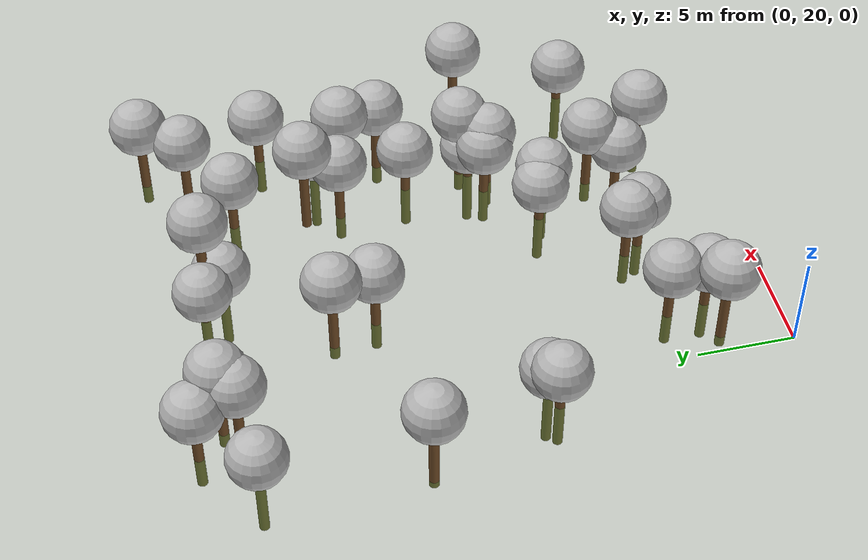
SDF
<sdf version="1.5">
 <world name="default">
  <model name="tree_simple477">
   <static>1</static>
   <link name="link">
    <pose>0 0 0.1 0 -0 0</pose>
    <collision name="collision_trunk">
     <pose>0 0 2 0 -0 0</pose>
     <geometry><cylinder><radius>0.25</radius><length>4</length></cylinder></geometry>
    </collision>
    <collision name="collision_treetop">
     <pose>0 0 5.2 0 -0 0</pose>
     <geometry><sphere><radius>1.5</radius></sphere></geometry>
    </collision>
    <visual name="trunk">
     <pose>0 0 2 0 -0 0</pose>
     <geometry><cylinder><radius>0.25</radius><length>4</length></cylinder></geometry>
     <material>
      <script>
       <uri>model://tree_simple/scripts</uri>
       <uri>model://tree_simple/materials/textures</uri>
       <name>TreeSimple/Trunk</name>
      </script>
     </material>
    </visual>
    <visual name="treetop">
     <pose>0 0 5.2 0 -0 0</pose>
     <geometry><sphere><radius>1.5</radius></sphere></geometry>
     <material>
      <script>
       <uri>model://tree_simple/scripts</uri>
       <uri>model://tree_simple/materials/textures</uri>
       <name>TreeSimple/Treetop</name>
      </script>
     </material>
    </visual>
   </link>
   <pose>-0.22927085135 32.6495918535 -4.0 0 -0 0</pose>
  </model>
  <model name="tree_simple457">
   <static>1</static>
   <link name="link">
    <pose>0 0 0.1 0 -0 0</pose>
    <collision name="collision_trunk">
     <pose>0 0 2 0 -0 0</pose>
     <geometry><cylinder><radius>0.25</radius><length>4</length></cylinder></geometry>
    </collision>
    <collision name="collision_treetop">
     <pose>0 0 5.2 0 -0 0</pose>
     <geometry><sphere><radius>1.5</radius></sphere></geometry>
    </collision>
    <visual name="trunk">
     <pose>0 0 2 0 -0 0</pose>
     <geometry><cylinder><radius>0.25</radius><length>4</length></cylinder></geometry>
     <material>
      <script>
       <uri>model://tree_simple/scripts</uri>
       <uri>model://tree_simple/materials/textures</uri>
       <name>TreeSimple/Trunk</name>
      </script>
     </material>
    </visual>
    <visual name="treetop">
     <pose>0 0 5.2 0 -0 0</pose>
     <geometry><sphere><radius>1.5</radius></sphere></geometry>
     <material>
      <script>
       <uri>model://tree_simple/scripts</uri>
       <uri>model://tree_simple/materials/textures</uri>
       <name>TreeSimple/Treetop</name>
      </script>
     </material>
    </visual>
   </link>
   <pose>13.2865883098 26.7984826025 -1.403246418944407 0 -0 0</pose>
  </model>
  <model name="tree_simple445">
   <static>1</static>
   <link name="link">
    <pose>0 0 0.1 0 -0 0</pose>
    <collision name="collision_trunk">
     <pose>0 0 2 0 -0 0</pose>
     <geometry><cylinder><radius>0.25</radius><length>4</length></cylinder></geometry>
    </collision>
    <collision name="collision_treetop">
     <pose>0 0 5.2 0 -0 0</pose>
     <geometry><sphere><radius>1.5</radius></sphere></geometry>
    </collision>
    <visual name="trunk">
     <pose>0 0 2 0 -0 0</pose>
     <geometry><cylinder><radius>0.25</radius><length>4</length></cylinder></geometry>
     <material>
      <script>
       <uri>model://tree_simple/scripts</uri>
       <uri>model://tree_simple/materials/textures</uri>
       <name>TreeSimple/Trunk</name>
      </script>
     </material>
    </visual>
    <visual name="treetop">
     <pose>0 0 5.2 0 -0 0</pose>
     <geometry><sphere><radius>1.5</radius></sphere></geometry>
     <material>
      <script>
       <uri>model://tree_simple/scripts</uri>
       <uri>model://tree_simple/materials/textures</uri>
       <name>TreeSimple/Treetop</name>
      </script>
     </material>
    </visual>
   </link>
   <pose>17.3330924595 47.7477611906 -1.7853356329379375 0 -0 0</pose>
  </model>
  <model name="tree_simple443">
   <static>1</static>
   <link name="link">
    <pose>0 0 0.1 0 -0 0</pose>
    <collision name="collision_trunk">
     <pose>0 0 2 0 -0 0</pose>
     <geometry><cylinder><radius>0.25</radius><length>4</length></cylinder></geometry>
    </collision>
    <collision name="collision_treetop">
     <pose>0 0 5.2 0 -0 0</pose>
     <geometry><sphere><radius>1.5</radius></sphere></geometry>
    </collision>
    <visual name="trunk">
     <pose>0 0 2 0 -0 0</pose>
     <geometry><cylinder><radius>0.25</radius><length>4</length></cylinder></geometry>
     <material>
      <script>
       <uri>model://tree_simple/scripts</uri>
       <uri>model://tree_simple/materials/textures</uri>
       <name>TreeSimple/Trunk</name>
      </script>
     </material>
    </visual>
    <visual name="treetop">
     <pose>0 0 5.2 0 -0 0</pose>
     <geometry><sphere><radius>1.5</radius></sphere></geometry>
     <material>
      <script>
       <uri>model://tree_simple/scripts</uri>
       <uri>model://tree_simple/materials/textures</uri>
       <name>TreeSimple/Treetop</name>
      </script>
     </material>
    </visual>
   </link>
   <pose>20.4518447393 32.4372971603 -0.8432911040166335 0 -0 0</pose>
  </model>
  <model name="tree_simple419">
   <static>1</static>
   <link name="link">
    <pose>0 0 0.1 0 -0 0</pose>
    <collision name="collision_trunk">
     <pose>0 0 2 0 -0 0</pose>
     <geometry><cylinder><radius>0.25</radius><length>4</length></cylinder></geometry>
    </collision>
    <collision name="collision_treetop">
     <pose>0 0 5.2 0 -0 0</pose>
     <geometry><sphere><radius>1.5</radius></sphere></geometry>
    </collision>
    <visual name="trunk">
     <pose>0 0 2 0 -0 0</pose>
     <geometry><cylinder><radius>0.25</radius><length>4</length></cylinder></geometry>
     <material>
      <script>
       <uri>model://tree_simple/scripts</uri>
       <uri>model://tree_simple/materials/textures</uri>
       <name>TreeSimple/Trunk</name>
      </script>
     </material>
    </visual>
    <visual name="treetop">
     <pose>0 0 5.2 0 -0 0</pose>
     <geometry><sphere><radius>1.5</radius></sphere></geometry>
     <material>
      <script>
       <uri>model://tree_simple/scripts</uri>
       <uri>model://tree_simple/materials/textures</uri>
       <name>TreeSimple/Treetop</name>
      </script>
     </material>
    </visual>
   </link>
   <pose>15.0608261067 36.3391301174 -2.628642200103363 0 -0 0</pose>
  </model>
  <model name="tree_simple413">
   <static>1</static>
   <link name="link">
    <pose>0 0 0.1 0 -0 0</pose>
    <collision name="collision_trunk">
     <pose>0 0 2 0 -0 0</pose>
     <geometry><cylinder><radius>0.25</radius><length>4</length></cylinder></geometry>
    </collision>
    <collision name="collision_treetop">
     <pose>0 0 5.2 0 -0 0</pose>
     <geometry><sphere><radius>1.5</radius></sphere></geometry>
    </collision>
    <visual name="trunk">
     <pose>0 0 2 0 -0 0</pose>
     <geometry><cylinder><radius>0.25</radius><length>4</length></cylinder></geometry>
     <material>
      <script>
       <uri>model://tree_simple/scripts</uri>
       <uri>model://tree_simple/materials/textures</uri>
       <name>TreeSimple/Trunk</name>
      </script>
     </material>
    </visual>
    <visual name="treetop">
     <pose>0 0 5.2 0 -0 0</pose>
     <geometry><sphere><radius>1.5</radius></sphere></geometry>
     <material>
      <script>
       <uri>model://tree_simple/scripts</uri>
       <uri>model://tree_simple/materials/textures</uri>
       <name>TreeSimple/Treetop</name>
      </script>
     </material>
    </visual>
   </link>
   <pose>4.79772995732 42.1907919742 -0.9087181584170372 0 -0 0</pose>
  </model>
  <model name="tree_simple405">
   <static>1</static>
   <link name="link">
    <pose>0 0 0.1 0 -0 0</pose>
    <collision name="collision_trunk">
     <pose>0 0 2 0 -0 0</pose>
     <geometry><cylinder><radius>0.25</radius><length>4</length></cylinder></geometry>
    </collision>
    <collision name="collision_treetop">
     <pose>0 0 5.2 0 -0 0</pose>
     <geometry><sphere><radius>1.5</radius></sphere></geometry>
    </collision>
    <visual name="trunk">
     <pose>0 0 2 0 -0 0</pose>
     <geometry><cylinder><radius>0.25</radius><length>4</length></cylinder></geometry>
     <material>
      <script>
       <uri>model://tree_simple/scripts</uri>
       <uri>model://tree_simple/materials/textures</uri>
       <name>TreeSimple/Trunk</name>
      </script>
     </material>
    </visual>
    <visual name="treetop">
     <pose>0 0 5.2 0 -0 0</pose>
     <geometry><sphere><radius>1.5</radius></sphere></geometry>
     <material>
      <script>
       <uri>model://tree_simple/scripts</uri>
       <uri>model://tree_simple/materials/textures</uri>
       <name>TreeSimple/Treetop</name>
      </script>
     </material>
    </visual>
   </link>
   <pose>13.9640568795 32.2793272532 -2.298750481296438 0 -0 0</pose>
  </model>
  <model name="tree_simple401">
   <static>1</static>
   <link name="link">
    <pose>0 0 0.1 0 -0 0</pose>
    <collision name="collision_trunk">
     <pose>0 0 2 0 -0 0</pose>
     <geometry><cylinder><radius>0.25</radius><length>4</length></cylinder></geometry>
    </collision>
    <collision name="collision_treetop">
     <pose>0 0 5.2 0 -0 0</pose>
     <geometry><sphere><radius>1.5</radius></sphere></geometry>
    </collision>
    <visual name="trunk">
     <pose>0 0 2 0 -0 0</pose>
     <geometry><cylinder><radius>0.25</radius><length>4</length></cylinder></geometry>
     <material>
      <script>
       <uri>model://tree_simple/scripts</uri>
       <uri>model://tree_simple/materials/textures</uri>
       <name>TreeSimple/Trunk</name>
      </script>
     </material>
    </visual>
    <visual name="treetop">
     <pose>0 0 5.2 0 -0 0</pose>
     <geometry><sphere><radius>1.5</radius></sphere></geometry>
     <material>
      <script>
       <uri>model://tree_simple/scripts</uri>
       <uri>model://tree_simple/materials/textures</uri>
       <name>TreeSimple/Treetop</name>
      </script>
     </material>
    </visual>
   </link>
   <pose>18.5119614972 49.8300347258 -1.2660611681586524 0 -0 0</pose>
  </model>
  <model name="tree_simple381">
   <static>1</static>
   <link name="link">
    <pose>0 0 0.1 0 -0 0</pose>
    <collision name="collision_trunk">
     <pose>0 0 2 0 -0 0</pose>
     <geometry><cylinder><radius>0.25</radius><length>4</length></cylinder></geometry>
    </collision>
    <collision name="collision_treetop">
     <pose>0 0 5.2 0 -0 0</pose>
     <geometry><sphere><radius>1.5</radius></sphere></geometry>
    </collision>
    <visual name="trunk">
     <pose>0 0 2 0 -0 0</pose>
     <geometry><cylinder><radius>0.25</radius><length>4</length></cylinder></geometry>
     <material>
      <script>
       <uri>model://tree_simple/scripts</uri>
       <uri>model://tree_simple/materials/textures</uri>
       <name>TreeSimple/Trunk</name>
      </script>
     </material>
    </visual>
    <visual name="treetop">
     <pose>0 0 5.2 0 -0 0</pose>
     <geometry><sphere><radius>1.5</radius></sphere></geometry>
     <material>
      <script>
       <uri>model://tree_simple/scripts</uri>
       <uri>model://tree_simple/materials/textures</uri>
       <name>TreeSimple/Treetop</name>
      </script>
     </material>
    </visual>
   </link>
   <pose>14.598493672 31.9609585056 -1.7814654148557194 0 -0 0</pose>
  </model>
  <model name="tree_simple372">
   <static>1</static>
   <link name="link">
    <pose>0 0 0.1 0 -0 0</pose>
    <collision name="collision_trunk">
     <pose>0 0 2 0 -0 0</pose>
     <geometry><cylinder><radius>0.25</radius><length>4</length></cylinder></geometry>
    </collision>
    <collision name="collision_treetop">
     <pose>0 0 5.2 0 -0 0</pose>
     <geometry><sphere><radius>1.5</radius></sphere></geometry>
    </collision>
    <visual name="trunk">
     <pose>0 0 2 0 -0 0</pose>
     <geometry><cylinder><radius>0.25</radius><length>4</length></cylinder></geometry>
     <material>
      <script>
       <uri>model://tree_simple/scripts</uri>
       <uri>model://tree_simple/materials/textures</uri>
       <name>TreeSimple/Trunk</name>
      </script>
     </material>
    </visual>
    <visual name="treetop">
     <pose>0 0 5.2 0 -0 0</pose>
     <geometry><sphere><radius>1.5</radius></sphere></geometry>
     <material>
      <script>
       <uri>model://tree_simple/scripts</uri>
       <uri>model://tree_simple/materials/textures</uri>
       <name>TreeSimple/Treetop</name>
      </script>
     </material>
    </visual>
   </link>
   <pose>19.0807104519 43.6051965294 -2.346626308120384 0 -0 0</pose>
  </model>
  <model name="tree_simple367">
   <static>1</static>
   <link name="link">
    <pose>0 0 0.1 0 -0 0</pose>
    <collision name="collision_trunk">
     <pose>0 0 2 0 -0 0</pose>
     <geometry><cylinder><radius>0.25</radius><length>4</length></cylinder></geometry>
    </collision>
    <collision name="collision_treetop">
     <pose>0 0 5.2 0 -0 0</pose>
     <geometry><sphere><radius>1.5</radius></sphere></geometry>
    </collision>
    <visual name="trunk">
     <pose>0 0 2 0 -0 0</pose>
     <geometry><cylinder><radius>0.25</radius><length>4</length></cylinder></geometry>
     <material>
      <script>
       <uri>model://tree_simple/scripts</uri>
       <uri>model://tree_simple/materials/textures</uri>
       <name>TreeSimple/Trunk</name>
      </script>
     </material>
    </visual>
    <visual name="treetop">
     <pose>0 0 5.2 0 -0 0</pose>
     <geometry><sphere><radius>1.5</radius></sphere></geometry>
     <material>
      <script>
       <uri>model://tree_simple/scripts</uri>
       <uri>model://tree_simple/materials/textures</uri>
       <name>TreeSimple/Treetop</name>
      </script>
     </material>
    </visual>
   </link>
   <pose>14.2659299001 45.7179827091 -2.152869244457574 0 -0 0</pose>
  </model>
  <model name="tree_simple365">
   <static>1</static>
   <link name="link">
    <pose>0 0 0.1 0 -0 0</pose>
    <collision name="collision_trunk">
     <pose>0 0 2 0 -0 0</pose>
     <geometry><cylinder><radius>0.25</radius><length>4</length></cylinder></geometry>
    </collision>
    <collision name="collision_treetop">
     <pose>0 0 5.2 0 -0 0</pose>
     <geometry><sphere><radius>1.5</radius></sphere></geometry>
    </collision>
    <visual name="trunk">
     <pose>0 0 2 0 -0 0</pose>
     <geometry><cylinder><radius>0.25</radius><length>4</length></cylinder></geometry>
     <material>
      <script>
       <uri>model://tree_simple/scripts</uri>
       <uri>model://tree_simple/materials/textures</uri>
       <name>TreeSimple/Trunk</name>
      </script>
     </material>
    </visual>
    <visual name="treetop">
     <pose>0 0 5.2 0 -0 0</pose>
     <geometry><sphere><radius>1.5</radius></sphere></geometry>
     <material>
      <script>
       <uri>model://tree_simple/scripts</uri>
       <uri>model://tree_simple/materials/textures</uri>
       <name>TreeSimple/Treetop</name>
      </script>
     </material>
    </visual>
   </link>
   <pose>7.96669325113 48.1339153876 -3.3762366232184773 0 -0 0</pose>
  </model>
  <model name="tree_simple356">
   <static>1</static>
   <link name="link">
    <pose>0 0 0.1 0 -0 0</pose>
    <collision name="collision_trunk">
     <pose>0 0 2 0 -0 0</pose>
     <geometry><cylinder><radius>0.25</radius><length>4</length></cylinder></geometry>
    </collision>
    <collision name="collision_treetop">
     <pose>0 0 5.2 0 -0 0</pose>
     <geometry><sphere><radius>1.5</radius></sphere></geometry>
    </collision>
    <visual name="trunk">
     <pose>0 0 2 0 -0 0</pose>
     <geometry><cylinder><radius>0.25</radius><length>4</length></cylinder></geometry>
     <material>
      <script>
       <uri>model://tree_simple/scripts</uri>
       <uri>model://tree_simple/materials/textures</uri>
       <name>TreeSimple/Trunk</name>
      </script>
     </material>
    </visual>
    <visual name="treetop">
     <pose>0 0 5.2 0 -0 0</pose>
     <geometry><sphere><radius>1.5</radius></sphere></geometry>
     <material>
      <script>
       <uri>model://tree_simple/scripts</uri>
       <uri>model://tree_simple/materials/textures</uri>
       <name>TreeSimple/Treetop</name>
      </script>
     </material>
    </visual>
   </link>
   <pose>-2.83030100633 47.164879459 -3.3703224850727596 0 -0 0</pose>
  </model>
  <model name="tree_simple340">
   <static>1</static>
   <link name="link">
    <pose>0 0 0.1 0 -0 0</pose>
    <collision name="collision_trunk">
     <pose>0 0 2 0 -0 0</pose>
     <geometry><cylinder><radius>0.25</radius><length>4</length></cylinder></geometry>
    </collision>
    <collision name="collision_treetop">
     <pose>0 0 5.2 0 -0 0</pose>
     <geometry><sphere><radius>1.5</radius></sphere></geometry>
    </collision>
    <visual name="trunk">
     <pose>0 0 2 0 -0 0</pose>
     <geometry><cylinder><radius>0.25</radius><length>4</length></cylinder></geometry>
     <material>
      <script>
       <uri>model://tree_simple/scripts</uri>
       <uri>model://tree_simple/materials/textures</uri>
       <name>TreeSimple/Trunk</name>
      </script>
     </material>
    </visual>
    <visual name="treetop">
     <pose>0 0 5.2 0 -0 0</pose>
     <geometry><sphere><radius>1.5</radius></sphere></geometry>
     <material>
      <script>
       <uri>model://tree_simple/scripts</uri>
       <uri>model://tree_simple/materials/textures</uri>
       <name>TreeSimple/Treetop</name>
      </script>
     </material>
    </visual>
   </link>
   <pose>15.6359324045 33.2415832038 -1.2640898373599714 0 -0 0</pose>
  </model>
  <model name="tree_simple339">
   <static>1</static>
   <link name="link">
    <pose>0 0 0.1 0 -0 0</pose>
    <collision name="collision_trunk">
     <pose>0 0 2 0 -0 0</pose>
     <geometry><cylinder><radius>0.25</radius><length>4</length></cylinder></geometry>
    </collision>
    <collision name="collision_treetop">
     <pose>0 0 5.2 0 -0 0</pose>
     <geometry><sphere><radius>1.5</radius></sphere></geometry>
    </collision>
    <visual name="trunk">
     <pose>0 0 2 0 -0 0</pose>
     <geometry><cylinder><radius>0.25</radius><length>4</length></cylinder></geometry>
     <material>
      <script>
       <uri>model://tree_simple/scripts</uri>
       <uri>model://tree_simple/materials/textures</uri>
       <name>TreeSimple/Trunk</name>
      </script>
     </material>
    </visual>
    <visual name="treetop">
     <pose>0 0 5.2 0 -0 0</pose>
     <geometry><sphere><radius>1.5</radius></sphere></geometry>
     <material>
      <script>
       <uri>model://tree_simple/scripts</uri>
       <uri>model://tree_simple/materials/textures</uri>
       <name>TreeSimple/Treetop</name>
      </script>
     </material>
    </visual>
   </link>
   <pose>8.14193712957 25.5166560065 -2.2947673510125846 0 -0 0</pose>
  </model>
  <model name="tree_simple328">
   <static>1</static>
   <link name="link">
    <pose>0 0 0.1 0 -0 0</pose>
    <collision name="collision_trunk">
     <pose>0 0 2 0 -0 0</pose>
     <geometry><cylinder><radius>0.25</radius><length>4</length></cylinder></geometry>
    </collision>
    <collision name="collision_treetop">
     <pose>0 0 5.2 0 -0 0</pose>
     <geometry><sphere><radius>1.5</radius></sphere></geometry>
    </collision>
    <visual name="trunk">
     <pose>0 0 2 0 -0 0</pose>
     <geometry><cylinder><radius>0.25</radius><length>4</length></cylinder></geometry>
     <material>
      <script>
       <uri>model://tree_simple/scripts</uri>
       <uri>model://tree_simple/materials/textures</uri>
       <name>TreeSimple/Trunk</name>
      </script>
     </material>
    </visual>
    <visual name="treetop">
     <pose>0 0 5.2 0 -0 0</pose>
     <geometry><sphere><radius>1.5</radius></sphere></geometry>
     <material>
      <script>
       <uri>model://tree_simple/scripts</uri>
       <uri>model://tree_simple/materials/textures</uri>
       <name>TreeSimple/Treetop</name>
      </script>
     </material>
    </visual>
   </link>
   <pose>3.34573808519 23.5188113382 -2.5178100098997263 0 -0 0</pose>
  </model>
  <model name="tree_simple325">
   <static>1</static>
   <link name="link">
    <pose>0 0 0.1 0 -0 0</pose>
    <collision name="collision_trunk">
     <pose>0 0 2 0 -0 0</pose>
     <geometry><cylinder><radius>0.25</radius><length>4</length></cylinder></geometry>
    </collision>
    <collision name="collision_treetop">
     <pose>0 0 5.2 0 -0 0</pose>
     <geometry><sphere><radius>1.5</radius></sphere></geometry>
    </collision>
    <visual name="trunk">
     <pose>0 0 2 0 -0 0</pose>
     <geometry><cylinder><radius>0.25</radius><length>4</length></cylinder></geometry>
     <material>
      <script>
       <uri>model://tree_simple/scripts</uri>
       <uri>model://tree_simple/materials/textures</uri>
       <name>TreeSimple/Trunk</name>
      </script>
     </material>
    </visual>
    <visual name="treetop">
     <pose>0 0 5.2 0 -0 0</pose>
     <geometry><sphere><radius>1.5</radius></sphere></geometry>
     <material>
      <script>
       <uri>model://tree_simple/scripts</uri>
       <uri>model://tree_simple/materials/textures</uri>
       <name>TreeSimple/Treetop</name>
      </script>
     </material>
    </visual>
   </link>
   <pose>16.3512762839 39.5353955834 -0.6232291980060862 0 -0 0</pose>
  </model>
  <model name="tree_simple320">
   <static>1</static>
   <link name="link">
    <pose>0 0 0.1 0 -0 0</pose>
    <collision name="collision_trunk">
     <pose>0 0 2 0 -0 0</pose>
     <geometry><cylinder><radius>0.25</radius><length>4</length></cylinder></geometry>
    </collision>
    <collision name="collision_treetop">
     <pose>0 0 5.2 0 -0 0</pose>
     <geometry><sphere><radius>1.5</radius></sphere></geometry>
    </collision>
    <visual name="trunk">
     <pose>0 0 2 0 -0 0</pose>
     <geometry><cylinder><radius>0.25</radius><length>4</length></cylinder></geometry>
     <material>
      <script>
       <uri>model://tree_simple/scripts</uri>
       <uri>model://tree_simple/materials/textures</uri>
       <name>TreeSimple/Trunk</name>
      </script>
     </material>
    </visual>
    <visual name="treetop">
     <pose>0 0 5.2 0 -0 0</pose>
     <geometry><sphere><radius>1.5</radius></sphere></geometry>
     <material>
      <script>
       <uri>model://tree_simple/scripts</uri>
       <uri>model://tree_simple/materials/textures</uri>
       <name>TreeSimple/Treetop</name>
      </script>
     </material>
    </visual>
   </link>
   <pose>17.4267796311 40.9028236297 -4.0 0 -0 0</pose>
  </model>
  <model name="tree_simple302">
   <static>1</static>
   <link name="link">
    <pose>0 0 0.1 0 -0 0</pose>
    <collision name="collision_trunk">
     <pose>0 0 2 0 -0 0</pose>
     <geometry><cylinder><radius>0.25</radius><length>4</length></cylinder></geometry>
    </collision>
    <collision name="collision_treetop">
     <pose>0 0 5.2 0 -0 0</pose>
     <geometry><sphere><radius>1.5</radius></sphere></geometry>
    </collision>
    <visual name="trunk">
     <pose>0 0 2 0 -0 0</pose>
     <geometry><cylinder><radius>0.25</radius><length>4</length></cylinder></geometry>
     <material>
      <script>
       <uri>model://tree_simple/scripts</uri>
       <uri>model://tree_simple/materials/textures</uri>
       <name>TreeSimple/Trunk</name>
      </script>
     </material>
    </visual>
    <visual name="treetop">
     <pose>0 0 5.2 0 -0 0</pose>
     <geometry><sphere><radius>1.5</radius></sphere></geometry>
     <material>
      <script>
       <uri>model://tree_simple/scripts</uri>
       <uri>model://tree_simple/materials/textures</uri>
       <name>TreeSimple/Treetop</name>
      </script>
     </material>
    </visual>
   </link>
   <pose>-4.36833306423 39.3035065939 -0.49974834232004217 0 -0 0</pose>
  </model>
  <model name="tree_simple299">
   <static>1</static>
   <link name="link">
    <pose>0 0 0.1 0 -0 0</pose>
    <collision name="collision_trunk">
     <pose>0 0 2 0 -0 0</pose>
     <geometry><cylinder><radius>0.25</radius><length>4</length></cylinder></geometry>
    </collision>
    <collision name="collision_treetop">
     <pose>0 0 5.2 0 -0 0</pose>
     <geometry><sphere><radius>1.5</radius></sphere></geometry>
    </collision>
    <visual name="trunk">
     <pose>0 0 2 0 -0 0</pose>
     <geometry><cylinder><radius>0.25</radius><length>4</length></cylinder></geometry>
     <material>
      <script>
       <uri>model://tree_simple/scripts</uri>
       <uri>model://tree_simple/materials/textures</uri>
       <name>TreeSimple/Trunk</name>
      </script>
     </material>
    </visual>
    <visual name="treetop">
     <pose>0 0 5.2 0 -0 0</pose>
     <geometry><sphere><radius>1.5</radius></sphere></geometry>
     <material>
      <script>
       <uri>model://tree_simple/scripts</uri>
       <uri>model://tree_simple/materials/textures</uri>
       <name>TreeSimple/Treetop</name>
      </script>
     </material>
    </visual>
   </link>
   <pose>-1.46806320409 32.459422197 -2.8417724852456283 0 -0 0</pose>
  </model>
  <model name="tree_simple287">
   <static>1</static>
   <link name="link">
    <pose>0 0 0.1 0 -0 0</pose>
    <collision name="collision_trunk">
     <pose>0 0 2 0 -0 0</pose>
     <geometry><cylinder><radius>0.25</radius><length>4</length></cylinder></geometry>
    </collision>
    <collision name="collision_treetop">
     <pose>0 0 5.2 0 -0 0</pose>
     <geometry><sphere><radius>1.5</radius></sphere></geometry>
    </collision>
    <visual name="trunk">
     <pose>0 0 2 0 -0 0</pose>
     <geometry><cylinder><radius>0.25</radius><length>4</length></cylinder></geometry>
     <material>
      <script>
       <uri>model://tree_simple/scripts</uri>
       <uri>model://tree_simple/materials/textures</uri>
       <name>TreeSimple/Trunk</name>
      </script>
     </material>
    </visual>
    <visual name="treetop">
     <pose>0 0 5.2 0 -0 0</pose>
     <geometry><sphere><radius>1.5</radius></sphere></geometry>
     <material>
      <script>
       <uri>model://tree_simple/scripts</uri>
       <uri>model://tree_simple/materials/textures</uri>
       <name>TreeSimple/Treetop</name>
      </script>
     </material>
    </visual>
   </link>
   <pose>5.81960290033 39.8953620518 -1.8418996906236411 0 -0 0</pose>
  </model>
  <model name="tree_simple275">
   <static>1</static>
   <link name="link">
    <pose>0 0 0.1 0 -0 0</pose>
    <collision name="collision_trunk">
     <pose>0 0 2 0 -0 0</pose>
     <geometry><cylinder><radius>0.25</radius><length>4</length></cylinder></geometry>
    </collision>
    <collision name="collision_treetop">
     <pose>0 0 5.2 0 -0 0</pose>
     <geometry><sphere><radius>1.5</radius></sphere></geometry>
    </collision>
    <visual name="trunk">
     <pose>0 0 2 0 -0 0</pose>
     <geometry><cylinder><radius>0.25</radius><length>4</length></cylinder></geometry>
     <material>
      <script>
       <uri>model://tree_simple/scripts</uri>
       <uri>model://tree_simple/materials/textures</uri>
       <name>TreeSimple/Trunk</name>
      </script>
     </material>
    </visual>
    <visual name="treetop">
     <pose>0 0 5.2 0 -0 0</pose>
     <geometry><sphere><radius>1.5</radius></sphere></geometry>
     <material>
      <script>
       <uri>model://tree_simple/scripts</uri>
       <uri>model://tree_simple/materials/textures</uri>
       <name>TreeSimple/Treetop</name>
      </script>
     </material>
    </visual>
   </link>
   <pose>11.2194181464 29.9629539421 -3.0047113733645534 0 -0 0</pose>
  </model>
  <model name="tree_simple273">
   <static>1</static>
   <link name="link">
    <pose>0 0 0.1 0 -0 0</pose>
    <collision name="collision_trunk">
     <pose>0 0 2 0 -0 0</pose>
     <geometry><cylinder><radius>0.25</radius><length>4</length></cylinder></geometry>
    </collision>
    <collision name="collision_treetop">
     <pose>0 0 5.2 0 -0 0</pose>
     <geometry><sphere><radius>1.5</radius></sphere></geometry>
    </collision>
    <visual name="trunk">
     <pose>0 0 2 0 -0 0</pose>
     <geometry><cylinder><radius>0.25</radius><length>4</length></cylinder></geometry>
     <material>
      <script>
       <uri>model://tree_simple/scripts</uri>
       <uri>model://tree_simple/materials/textures</uri>
       <name>TreeSimple/Trunk</name>
      </script>
     </material>
    </visual>
    <visual name="treetop">
     <pose>0 0 5.2 0 -0 0</pose>
     <geometry><sphere><radius>1.5</radius></sphere></geometry>
     <material>
      <script>
       <uri>model://tree_simple/scripts</uri>
       <uri>model://tree_simple/materials/textures</uri>
       <name>TreeSimple/Treetop</name>
      </script>
     </material>
    </visual>
   </link>
   <pose>0.615452914857 48.3188405116 -0.9890145627713429 0 -0 0</pose>
  </model>
  <model name="tree_simple260">
   <static>1</static>
   <link name="link">
    <pose>0 0 0.1 0 -0 0</pose>
    <collision name="collision_trunk">
     <pose>0 0 2 0 -0 0</pose>
     <geometry><cylinder><radius>0.25</radius><length>4</length></cylinder></geometry>
    </collision>
    <collision name="collision_treetop">
     <pose>0 0 5.2 0 -0 0</pose>
     <geometry><sphere><radius>1.5</radius></sphere></geometry>
    </collision>
    <visual name="trunk">
     <pose>0 0 2 0 -0 0</pose>
     <geometry><cylinder><radius>0.25</radius><length>4</length></cylinder></geometry>
     <material>
      <script>
       <uri>model://tree_simple/scripts</uri>
       <uri>model://tree_simple/materials/textures</uri>
       <name>TreeSimple/Trunk</name>
      </script>
     </material>
    </visual>
    <visual name="treetop">
     <pose>0 0 5.2 0 -0 0</pose>
     <geometry><sphere><radius>1.5</radius></sphere></geometry>
     <material>
      <script>
       <uri>model://tree_simple/scripts</uri>
       <uri>model://tree_simple/materials/textures</uri>
       <name>TreeSimple/Treetop</name>
      </script>
     </material>
    </visual>
   </link>
   <pose>20.4747246255 26.3739745209 -3.1815668627055844 0 -0 0</pose>
  </model>
  <model name="tree_simple254">
   <static>1</static>
   <link name="link">
    <pose>0 0 0.1 0 -0 0</pose>
    <collision name="collision_trunk">
     <pose>0 0 2 0 -0 0</pose>
     <geometry><cylinder><radius>0.25</radius><length>4</length></cylinder></geometry>
    </collision>
    <collision name="collision_treetop">
     <pose>0 0 5.2 0 -0 0</pose>
     <geometry><sphere><radius>1.5</radius></sphere></geometry>
    </collision>
    <visual name="trunk">
     <pose>0 0 2 0 -0 0</pose>
     <geometry><cylinder><radius>0.25</radius><length>4</length></cylinder></geometry>
     <material>
      <script>
       <uri>model://tree_simple/scripts</uri>
       <uri>model://tree_simple/materials/textures</uri>
       <name>TreeSimple/Trunk</name>
      </script>
     </material>
    </visual>
    <visual name="treetop">
     <pose>0 0 5.2 0 -0 0</pose>
     <geometry><sphere><radius>1.5</radius></sphere></geometry>
     <material>
      <script>
       <uri>model://tree_simple/scripts</uri>
       <uri>model://tree_simple/materials/textures</uri>
       <name>TreeSimple/Treetop</name>
      </script>
     </material>
    </visual>
   </link>
   <pose>13.3684370787 41.9999258399 -0.0 0 -0 0</pose>
  </model>
  <model name="tree_simple229">
   <static>1</static>
   <link name="link">
    <pose>0 0 0.1 0 -0 0</pose>
    <collision name="collision_trunk">
     <pose>0 0 2 0 -0 0</pose>
     <geometry><cylinder><radius>0.25</radius><length>4</length></cylinder></geometry>
    </collision>
    <collision name="collision_treetop">
     <pose>0 0 5.2 0 -0 0</pose>
     <geometry><sphere><radius>1.5</radius></sphere></geometry>
    </collision>
    <visual name="trunk">
     <pose>0 0 2 0 -0 0</pose>
     <geometry><cylinder><radius>0.25</radius><length>4</length></cylinder></geometry>
     <material>
      <script>
       <uri>model://tree_simple/scripts</uri>
       <uri>model://tree_simple/materials/textures</uri>
       <name>TreeSimple/Trunk</name>
      </script>
     </material>
    </visual>
    <visual name="treetop">
     <pose>0 0 5.2 0 -0 0</pose>
     <geometry><sphere><radius>1.5</radius></sphere></geometry>
     <material>
      <script>
       <uri>model://tree_simple/scripts</uri>
       <uri>model://tree_simple/materials/textures</uri>
       <name>TreeSimple/Treetop</name>
      </script>
     </material>
    </visual>
   </link>
   <pose>17.1703693381 37.4765229217 -1.2535949123101915 0 -0 0</pose>
  </model>
  <model name="tree_simple196">
   <static>1</static>
   <link name="link">
    <pose>0 0 0.1 0 -0 0</pose>
    <collision name="collision_trunk">
     <pose>0 0 2 0 -0 0</pose>
     <geometry><cylinder><radius>0.25</radius><length>4</length></cylinder></geometry>
    </collision>
    <collision name="collision_treetop">
     <pose>0 0 5.2 0 -0 0</pose>
     <geometry><sphere><radius>1.5</radius></sphere></geometry>
    </collision>
    <visual name="trunk">
     <pose>0 0 2 0 -0 0</pose>
     <geometry><cylinder><radius>0.25</radius><length>4</length></cylinder></geometry>
     <material>
      <script>
       <uri>model://tree_simple/scripts</uri>
       <uri>model://tree_simple/materials/textures</uri>
       <name>TreeSimple/Trunk</name>
      </script>
     </material>
    </visual>
    <visual name="treetop">
     <pose>0 0 5.2 0 -0 0</pose>
     <geometry><sphere><radius>1.5</radius></sphere></geometry>
     <material>
      <script>
       <uri>model://tree_simple/scripts</uri>
       <uri>model://tree_simple/materials/textures</uri>
       <name>TreeSimple/Treetop</name>
      </script>
     </material>
    </visual>
   </link>
   <pose>13.7422198568 40.1413468751 -1.6023508863908411 0 -0 0</pose>
  </model>
  <model name="tree_simple189">
   <static>1</static>
   <link name="link">
    <pose>0 0 0.1 0 -0 0</pose>
    <collision name="collision_trunk">
     <pose>0 0 2 0 -0 0</pose>
     <geometry><cylinder><radius>0.25</radius><length>4</length></cylinder></geometry>
    </collision>
    <collision name="collision_treetop">
     <pose>0 0 5.2 0 -0 0</pose>
     <geometry><sphere><radius>1.5</radius></sphere></geometry>
    </collision>
    <visual name="trunk">
     <pose>0 0 2 0 -0 0</pose>
     <geometry><cylinder><radius>0.25</radius><length>4</length></cylinder></geometry>
     <material>
      <script>
       <uri>model://tree_simple/scripts</uri>
       <uri>model://tree_simple/materials/textures</uri>
       <name>TreeSimple/Trunk</name>
      </script>
     </material>
    </visual>
    <visual name="treetop">
     <pose>0 0 5.2 0 -0 0</pose>
     <geometry><sphere><radius>1.5</radius></sphere></geometry>
     <material>
      <script>
       <uri>model://tree_simple/scripts</uri>
       <uri>model://tree_simple/materials/textures</uri>
       <name>TreeSimple/Treetop</name>
      </script>
     </material>
    </visual>
   </link>
   <pose>7.56705231804 26.3742867244 -2.1236997290030697 0 -0 0</pose>
  </model>
  <model name="tree_simple184">
   <static>1</static>
   <link name="link">
    <pose>0 0 0.1 0 -0 0</pose>
    <collision name="collision_trunk">
     <pose>0 0 2 0 -0 0</pose>
     <geometry><cylinder><radius>0.25</radius><length>4</length></cylinder></geometry>
    </collision>
    <collision name="collision_treetop">
     <pose>0 0 5.2 0 -0 0</pose>
     <geometry><sphere><radius>1.5</radius></sphere></geometry>
    </collision>
    <visual name="trunk">
     <pose>0 0 2 0 -0 0</pose>
     <geometry><cylinder><radius>0.25</radius><length>4</length></cylinder></geometry>
     <material>
      <script>
       <uri>model://tree_simple/scripts</uri>
       <uri>model://tree_simple/materials/textures</uri>
       <name>TreeSimple/Trunk</name>
      </script>
     </material>
    </visual>
    <visual name="treetop">
     <pose>0 0 5.2 0 -0 0</pose>
     <geometry><sphere><radius>1.5</radius></sphere></geometry>
     <material>
      <script>
       <uri>model://tree_simple/scripts</uri>
       <uri>model://tree_simple/materials/textures</uri>
       <name>TreeSimple/Treetop</name>
      </script>
     </material>
    </visual>
   </link>
   <pose>-0.656302905273 49.6633789535 -1.9848950304380784 0 -0 0</pose>
  </model>
  <model name="tree_simple181">
   <static>1</static>
   <link name="link">
    <pose>0 0 0.1 0 -0 0</pose>
    <collision name="collision_trunk">
     <pose>0 0 2 0 -0 0</pose>
     <geometry><cylinder><radius>0.25</radius><length>4</length></cylinder></geometry>
    </collision>
    <collision name="collision_treetop">
     <pose>0 0 5.2 0 -0 0</pose>
     <geometry><sphere><radius>1.5</radius></sphere></geometry>
    </collision>
    <visual name="trunk">
     <pose>0 0 2 0 -0 0</pose>
     <geometry><cylinder><radius>0.25</radius><length>4</length></cylinder></geometry>
     <material>
      <script>
       <uri>model://tree_simple/scripts</uri>
       <uri>model://tree_simple/materials/textures</uri>
       <name>TreeSimple/Trunk</name>
      </script>
     </material>
    </visual>
    <visual name="treetop">
     <pose>0 0 5.2 0 -0 0</pose>
     <geometry><sphere><radius>1.5</radius></sphere></geometry>
     <material>
      <script>
       <uri>model://tree_simple/scripts</uri>
       <uri>model://tree_simple/materials/textures</uri>
       <name>TreeSimple/Treetop</name>
      </script>
     </material>
    </visual>
   </link>
   <pose>14.8848643659 23.5674852772 -1.3640717020173478 0 -0 0</pose>
  </model>
  <model name="tree_simple170">
   <static>1</static>
   <link name="link">
    <pose>0 0 0.1 0 -0 0</pose>
    <collision name="collision_trunk">
     <pose>0 0 2 0 -0 0</pose>
     <geometry><cylinder><radius>0.25</radius><length>4</length></cylinder></geometry>
    </collision>
    <collision name="collision_treetop">
     <pose>0 0 5.2 0 -0 0</pose>
     <geometry><sphere><radius>1.5</radius></sphere></geometry>
    </collision>
    <visual name="trunk">
     <pose>0 0 2 0 -0 0</pose>
     <geometry><cylinder><radius>0.25</radius><length>4</length></cylinder></geometry>
     <material>
      <script>
       <uri>model://tree_simple/scripts</uri>
       <uri>model://tree_simple/materials/textures</uri>
       <name>TreeSimple/Trunk</name>
      </script>
     </material>
    </visual>
    <visual name="treetop">
     <pose>0 0 5.2 0 -0 0</pose>
     <geometry><sphere><radius>1.5</radius></sphere></geometry>
     <material>
      <script>
       <uri>model://tree_simple/scripts</uri>
       <uri>model://tree_simple/materials/textures</uri>
       <name>TreeSimple/Treetop</name>
      </script>
     </material>
    </visual>
   </link>
   <pose>15.3427930971 32.8273761874 -3.3478618895056895 0 -0 0</pose>
  </model>
  <model name="tree_simple148">
   <static>1</static>
   <link name="link">
    <pose>0 0 0.1 0 -0 0</pose>
    <collision name="collision_trunk">
     <pose>0 0 2 0 -0 0</pose>
     <geometry><cylinder><radius>0.25</radius><length>4</length></cylinder></geometry>
    </collision>
    <collision name="collision_treetop">
     <pose>0 0 5.2 0 -0 0</pose>
     <geometry><sphere><radius>1.5</radius></sphere></geometry>
    </collision>
    <visual name="trunk">
     <pose>0 0 2 0 -0 0</pose>
     <geometry><cylinder><radius>0.25</radius><length>4</length></cylinder></geometry>
     <material>
      <script>
       <uri>model://tree_simple/scripts</uri>
       <uri>model://tree_simple/materials/textures</uri>
       <name>TreeSimple/Trunk</name>
      </script>
     </material>
    </visual>
    <visual name="treetop">
     <pose>0 0 5.2 0 -0 0</pose>
     <geometry><sphere><radius>1.5</radius></sphere></geometry>
     <material>
      <script>
       <uri>model://tree_simple/scripts</uri>
       <uri>model://tree_simple/materials/textures</uri>
       <name>TreeSimple/Treetop</name>
      </script>
     </material>
    </visual>
   </link>
   <pose>9.57342478742 47.8556833804 -0.20406017469035342 0 -0 0</pose>
  </model>
  <model name="tree_simple141">
   <static>1</static>
   <link name="link">
    <pose>0 0 0.1 0 -0 0</pose>
    <collision name="collision_trunk">
     <pose>0 0 2 0 -0 0</pose>
     <geometry><cylinder><radius>0.25</radius><length>4</length></cylinder></geometry>
    </collision>
    <collision name="collision_treetop">
     <pose>0 0 5.2 0 -0 0</pose>
     <geometry><sphere><radius>1.5</radius></sphere></geometry>
    </collision>
    <visual name="trunk">
     <pose>0 0 2 0 -0 0</pose>
     <geometry><cylinder><radius>0.25</radius><length>4</length></cylinder></geometry>
     <material>
      <script>
       <uri>model://tree_simple/scripts</uri>
       <uri>model://tree_simple/materials/textures</uri>
       <name>TreeSimple/Trunk</name>
      </script>
     </material>
    </visual>
    <visual name="treetop">
     <pose>0 0 5.2 0 -0 0</pose>
     <geometry><sphere><radius>1.5</radius></sphere></geometry>
     <material>
      <script>
       <uri>model://tree_simple/scripts</uri>
       <uri>model://tree_simple/materials/textures</uri>
       <name>TreeSimple/Treetop</name>
      </script>
     </material>
    </visual>
   </link>
   <pose>9.87468341031 46.9856847557 -4.0 0 -0 0</pose>
  </model>
  <model name="tree_simple113">
   <static>1</static>
   <link name="link">
    <pose>0 0 0.1 0 -0 0</pose>
    <collision name="collision_trunk">
     <pose>0 0 2 0 -0 0</pose>
     <geometry><cylinder><radius>0.25</radius><length>4</length></cylinder></geometry>
    </collision>
    <collision name="collision_treetop">
     <pose>0 0 5.2 0 -0 0</pose>
     <geometry><sphere><radius>1.5</radius></sphere></geometry>
    </collision>
    <visual name="trunk">
     <pose>0 0 2 0 -0 0</pose>
     <geometry><cylinder><radius>0.25</radius><length>4</length></cylinder></geometry>
     <material>
      <script>
       <uri>model://tree_simple/scripts</uri>
       <uri>model://tree_simple/materials/textures</uri>
       <name>TreeSimple/Trunk</name>
      </script>
     </material>
    </visual>
    <visual name="treetop">
     <pose>0 0 5.2 0 -0 0</pose>
     <geometry><sphere><radius>1.5</radius></sphere></geometry>
     <material>
      <script>
       <uri>model://tree_simple/scripts</uri>
       <uri>model://tree_simple/materials/textures</uri>
       <name>TreeSimple/Treetop</name>
      </script>
     </material>
    </visual>
   </link>
   <pose>2.99718347824 25.5817803205 -2.0570024766235133 0 -0 0</pose>
  </model>
  <model name="tree_simple93">
   <static>1</static>
   <link name="link">
    <pose>0 0 0.1 0 -0 0</pose>
    <collision name="collision_trunk">
     <pose>0 0 2 0 -0 0</pose>
     <geometry><cylinder><radius>0.25</radius><length>4</length></cylinder></geometry>
    </collision>
    <collision name="collision_treetop">
     <pose>0 0 5.2 0 -0 0</pose>
     <geometry><sphere><radius>1.5</radius></sphere></geometry>
    </collision>
    <visual name="trunk">
     <pose>0 0 2 0 -0 0</pose>
     <geometry><cylinder><radius>0.25</radius><length>4</length></cylinder></geometry>
     <material>
      <script>
       <uri>model://tree_simple/scripts</uri>
       <uri>model://tree_simple/materials/textures</uri>
       <name>TreeSimple/Trunk</name>
      </script>
     </material>
    </visual>
    <visual name="treetop">
     <pose>0 0 5.2 0 -0 0</pose>
     <geometry><sphere><radius>1.5</radius></sphere></geometry>
     <material>
      <script>
       <uri>model://tree_simple/scripts</uri>
       <uri>model://tree_simple/materials/textures</uri>
       <name>TreeSimple/Treetop</name>
      </script>
     </material>
    </visual>
   </link>
   <pose>12.2251876967 29.518935973 -2.6499086381840287 0 -0 0</pose>
  </model>
  <model name="tree_simple73">
   <static>1</static>
   <link name="link">
    <pose>0 0 0.1 0 -0 0</pose>
    <collision name="collision_trunk">
     <pose>0 0 2 0 -0 0</pose>
     <geometry><cylinder><radius>0.25</radius><length>4</length></cylinder></geometry>
    </collision>
    <collision name="collision_treetop">
     <pose>0 0 5.2 0 -0 0</pose>
     <geometry><sphere><radius>1.5</radius></sphere></geometry>
    </collision>
    <visual name="trunk">
     <pose>0 0 2 0 -0 0</pose>
     <geometry><cylinder><radius>0.25</radius><length>4</length></cylinder></geometry>
     <material>
      <script>
       <uri>model://tree_simple/scripts</uri>
       <uri>model://tree_simple/materials/textures</uri>
       <name>TreeSimple/Trunk</name>
      </script>
     </material>
    </visual>
    <visual name="treetop">
     <pose>0 0 5.2 0 -0 0</pose>
     <geometry><sphere><radius>1.5</radius></sphere></geometry>
     <material>
      <script>
       <uri>model://tree_simple/scripts</uri>
       <uri>model://tree_simple/materials/textures</uri>
       <name>TreeSimple/Treetop</name>
      </script>
     </material>
    </visual>
   </link>
   <pose>1.10004900248 23.4568824066 -0.7840824938907383 0 -0 0</pose>
  </model>
  <model name="tree_simple29">
   <static>1</static>
   <link name="link">
    <pose>0 0 0.1 0 -0 0</pose>
    <collision name="collision_trunk">
     <pose>0 0 2 0 -0 0</pose>
     <geometry><cylinder><radius>0.25</radius><length>4</length></cylinder></geometry>
    </collision>
    <collision name="collision_treetop">
     <pose>0 0 5.2 0 -0 0</pose>
     <geometry><sphere><radius>1.5</radius></sphere></geometry>
    </collision>
    <visual name="trunk">
     <pose>0 0 2 0 -0 0</pose>
     <geometry><cylinder><radius>0.25</radius><length>4</length></cylinder></geometry>
     <material>
      <script>
       <uri>model://tree_simple/scripts</uri>
       <uri>model://tree_simple/materials/textures</uri>
       <name>TreeSimple/Trunk</name>
      </script>
     </material>
    </visual>
    <visual name="treetop">
     <pose>0 0 5.2 0 -0 0</pose>
     <geometry><sphere><radius>1.5</radius></sphere></geometry>
     <material>
      <script>
       <uri>model://tree_simple/scripts</uri>
       <uri>model://tree_simple/materials/textures</uri>
       <name>TreeSimple/Treetop</name>
      </script>
     </material>
    </visual>
   </link>
   <pose>12.5241211449 25.4206849783 -2.283347464115904 0 -0 0</pose>
  </model>
  <model name="tree_simple8">
   <static>1</static>
   <link name="link">
    <pose>0 0 0.1 0 -0 0</pose>
    <collision name="collision_trunk">
     <pose>0 0 2 0 -0 0</pose>
     <geometry><cylinder><radius>0.25</radius><length>4</length></cylinder></geometry>
    </collision>
    <collision name="collision_treetop">
     <pose>0 0 5.2 0 -0 0</pose>
     <geometry><sphere><radius>1.5</radius></sphere></geometry>
    </collision>
    <visual name="trunk">
     <pose>0 0 2 0 -0 0</pose>
     <geometry><cylinder><radius>0.25</radius><length>4</length></cylinder></geometry>
     <material>
      <script>
       <uri>model://tree_simple/scripts</uri>
       <uri>model://tree_simple/materials/textures</uri>
       <name>TreeSimple/Trunk</name>
      </script>
     </material>
    </visual>
    <visual name="treetop">
     <pose>0 0 5.2 0 -0 0</pose>
     <geometry><sphere><radius>1.5</radius></sphere></geometry>
     <material>
      <script>
       <uri>model://tree_simple/scripts</uri>
       <uri>model://tree_simple/materials/textures</uri>
       <name>TreeSimple/Treetop</name>
      </script>
     </material>
    </visual>
   </link>
   <pose>-0.0806876510323 47.6134799774 -1.4105220355118488 0 -0 0</pose>
  </model>
  <model name="ground_plane">
   <static>true</static>
   <link name="link">
    <collision name="collision">
     <geometry><plane><normal>0 0 1</normal><size>250 250</size></plane></geometry>
     <surface><friction><ode><mu>1</mu><mu2>1</mu2></ode></friction></surface>
    </collision>
    <visual name="grass">
     <cast_shadows>false</cast_shadows>
     <geometry><plane><normal>0 0 1</normal><size>150 250</size></plane></geometry>
     <material>
      <script><uri>file://media/materials/scripts/Gazebo.material</uri><name>Gazebo/Grass</name></script>
     </material>
    </visual>
   </link>
  </model>
 </world>
</sdf>
